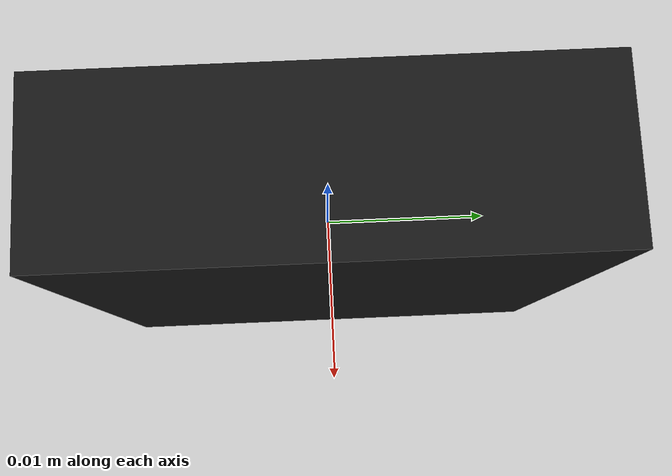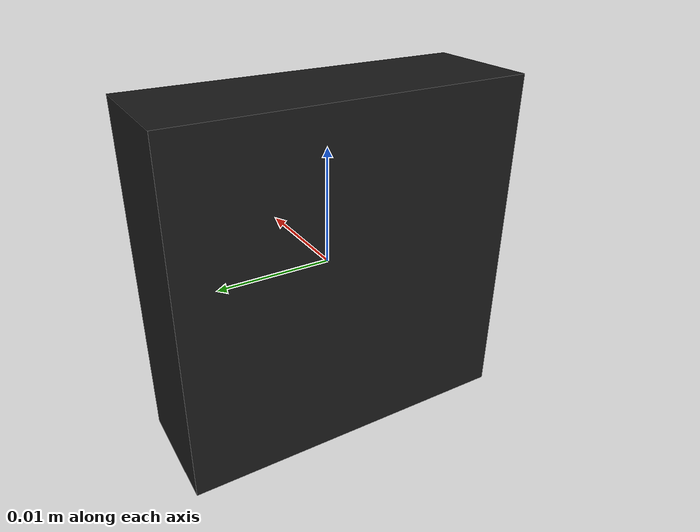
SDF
<?xml version="1.0" encoding="UTF-8"?>
<sdf version="1.9">
  <model name="mono_cam">
    <pose>0 0 0 0 0 0</pose>
    <link name="link">
      <inertial>
        <mass>0.015</mass>
        <inertia>
          <ixx>1e-05</ixx>
          <ixy>0</ixy>
          <ixz>0</ixz>
          <iyy>1e-05</iyy>
          <iyz>0</iyz>
          <izz>1e-05</izz>
        </inertia>
      </inertial>
      <visual name="visual">
        <geometry>
          <box>
            <size>0.01 0.03 0.03</size>
          </box>
        </geometry>
        <material>
          <ambient>0.1 0.1 0.1 1</ambient>
          <diffuse>0.1 0.1 0.1 1</diffuse>
          <specular>0.01 0.01 0.01 1</specular>
        </material>
      </visual>
      <sensor name="camera" type="camera">
        <camera>
          <horizontal_fov>1.047</horizontal_fov>
          <image>
            <width>640</width>
            <height>480</height>
          </image>
          <clip>
            <near>0.1</near>
            <far>100</far>
          </clip>
        </camera>
        <always_on>1</always_on>
        <update_rate>30</update_rate>
        <visualize>true</visualize>
        <topic>camera/image</topic>
      </sensor>
    </link>
  </model>
</sdf>
